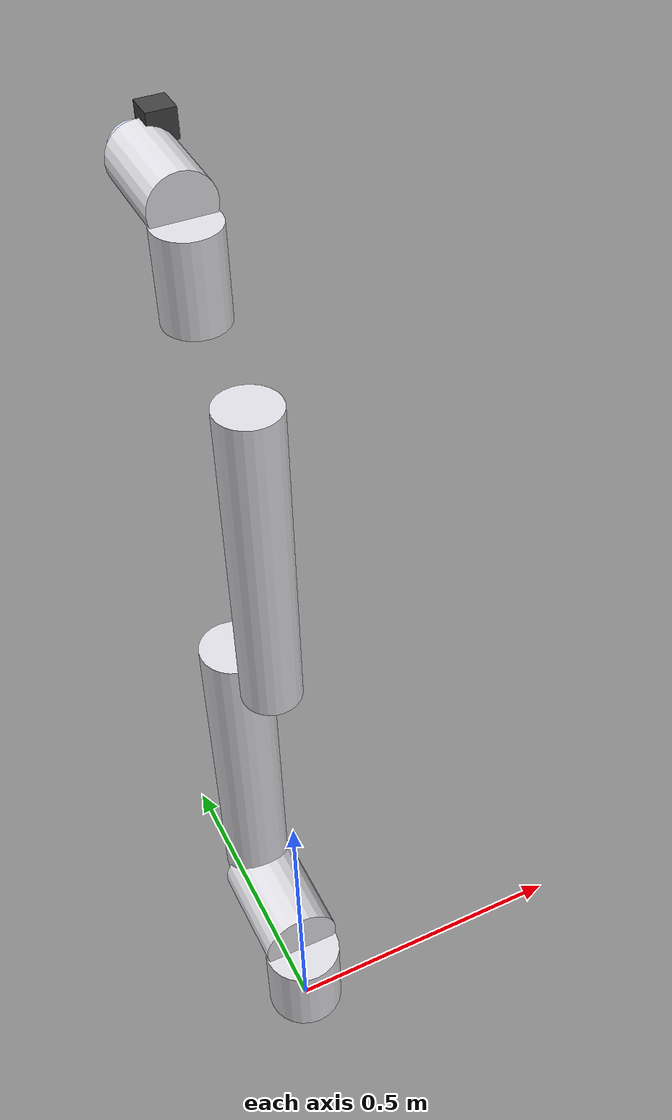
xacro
<?xml version="1.0"?>
<robot xmlns:xacro="http://www.ros.org/wiki/xacro" name="sbot">
  <xacro:arg name="use_fake_hardware" default="true"/>

  <xacro:include filename="$(find sbot_core_base_config)/description/sbot_core.urdf"/>

  <link name="grasp_link"/>
  <joint name="grasp_link_joint" type="fixed">
    <parent link="tool0"/>
    <child link="grasp_link"/>
    <origin xyz="0 0 0" rpy="0 0 0"/>
  </joint>

  <xacro:include filename="$(find sbot_core_base_config)/description/sbot_core.ros2_control.xacro"/>
  <xacro:sbot_core_ros2_control name="SbotCoreSystem" use_fake_hardware="$(arg use_fake_hardware)"/>
</robot>

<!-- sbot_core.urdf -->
<robot name="sbot">
  <link name="world"/>

  <!-- base_link — pedestal, ~17cm tall to joint0 -->
  <link name="base_link">
    <inertial>
      <mass value="1.3899"/>
      <origin rpy="0 0 0" xyz="3.5615e-07 -3.5615e-07 0.038531"/>
      <inertia ixx="0.0032902" ixy="-4.9417e-13" ixz="6.3717e-08" iyy="0.0032903" iyz="-6.3717e-08" izz="0.0056833"/>
    </inertial>
    <visual>
      <origin rpy="0 0 0" xyz="0 0 0.075"/>
      <geometry><cylinder radius="0.065" length="0.15"/></geometry>
      <material name="sbot_grey"><color rgba="0.86667 0.86667 0.8902 1"/></material>
    </visual>
    <collision>
      <origin rpy="0 0 0" xyz="0 0 0.075"/>
      <geometry><cylinder radius="0.06" length="0.14"/></geometry>
    </collision>
  </link>

  <!-- shoulder_link — extends in -X to joint1 at x=-0.1885 -->
  <link name="shoulder_link">
    <inertial>
      <mass value="7.48000886526123"/>
      <origin rpy="0 0 0" xyz="-0.0155060034853395 5.31133813950851e-06 0.00202665932285853"/>
      <inertia ixx="0.0290130325419372" ixy="1.13558315803054e-06" ixz="-0.000123670453068877" iyy="0.0296005432331486" iyz="7.83938203517328e-08" izz="0.0236795403640951"/>
    </inertial>
    <visual>
      <origin rpy="0 1.5707963 0" xyz="-0.09 0 0"/>
      <geometry><cylinder radius="0.065" length="0.18"/></geometry>
      <material name="sbot_grey"/>
    </visual>
    <collision>
      <origin rpy="0 1.5707963 0" xyz="-0.09 0 0"/>
      <geometry><cylinder radius="0.06" length="0.16"/></geometry>
    </collision>
  </link>

  <!-- upper_arm_link — extends along +Z to joint2 at z=0.5907 -->
  <link name="upper_arm_link">
    <inertial>
      <mass value="13.27"/>
      <origin rpy="0 0 0" xyz="0.00037048 -1.0498e-06 0.24431"/>
      <inertia ixx="0.67313" ixy="1.0675e-07" ixz="-0.0075436" iyy="0.67925" iyz="-4.7892e-06" izz="0.037155"/>
    </inertial>
    <visual>
      <origin rpy="0 0 0" xyz="0 0 0.295"/>
      <geometry><cylinder radius="0.055" length="0.55"/></geometry>
      <material name="sbot_grey"/>
    </visual>
    <collision>
      <origin rpy="0 0 0" xyz="0 0 0.295"/>
      <geometry><cylinder radius="0.05" length="0.52"/></geometry>
    </collision>
  </link>

  <!-- forearm_link — extends along +Z to joint3 at z=0.5494 -->
  <link name="forearm_link">
    <inertial>
      <mass value="3.99015526098533"/>
      <origin rpy="0 0 0" xyz="-0.00856270285673266 -0.000680803891636816 0.284368892424253"/>
      <inertia ixx="0.183498055568642" ixy="5.42912788104132e-05" ixz="-0.00223976271110487" iyy="0.185228712942926" iyz="0.000226731091687184" izz="0.00597848990228215"/>
    </inertial>
    <visual>
      <origin rpy="0 0 0" xyz="0 0 0.275"/>
      <geometry><cylinder radius="0.045" length="0.50"/></geometry>
      <material name="sbot_grey"/>
    </visual>
    <collision>
      <origin rpy="0 0 0" xyz="0 0 0.275"/>
      <geometry><cylinder radius="0.04" length="0.47"/></geometry>
    </collision>
  </link>

  <!-- wrist_1_link — extends along +Z to joint4 at z=0.1498 -->
  <link name="wrist_1_link">
    <inertial>
      <mass value="2.34998758206812"/>
      <origin rpy="0 0 0" xyz="0.00603382118543186 5.30466422090696e-05 0.00949427052813601"/>
      <inertia ixx="0.00536507490753713" ixy="-1.22216192461661e-06" ixz="7.53472115754737e-05" iyy="0.00569170816671894" iyz="-2.77149728808046e-06" izz="0.00279356137797234"/>
    </inertial>
    <visual>
      <origin rpy="0 0 0" xyz="0 0 0.07"/>
      <geometry><cylinder radius="0.045" length="0.13"/></geometry>
      <material name="sbot_grey"/>
    </visual>
    <collision>
      <origin rpy="0 0 0" xyz="0 0 0.07"/>
      <geometry><cylinder radius="0.04" length="0.11"/></geometry>
    </collision>
  </link>

  <!-- wrist_2_link — extends along -X to joint5 at x=-0.1621 -->
  <link name="wrist_2_link">
    <inertial>
      <mass value="2.34998758206813"/>
      <origin rpy="0 0 0" xyz="-0.00949427052813648 -5.30466422084472e-05 -0.00603382118543183"/>
      <inertia ixx="0.00279356137797234" ixy="-2.77149728807979e-06" ixz="7.53472115754781e-05" iyy="0.00569170816671896" iyz="-1.2221619246072e-06" izz="0.00536507490753716"/>
    </inertial>
    <visual>
      <origin rpy="0 1.5707963 0" xyz="-0.075 0 0"/>
      <geometry><cylinder radius="0.045" length="0.14"/></geometry>
      <material name="sbot_grey"/>
    </visual>
    <collision>
      <origin rpy="0 1.5707963 0" xyz="-0.075 0 0"/>
      <geometry><cylinder radius="0.04" length="0.12"/></geometry>
    </collision>
  </link>

  <!-- wrist_3_link — small wrist tip, mass center near +X 0.048 -->
  <link name="wrist_3_link">
    <inertial>
      <mass value="0.572775624406093"/>
      <origin rpy="0 0 0" xyz="0.0477321679131623 0.00028403740032851 -0.00497796255034433"/>
      <inertia ixx="0.000707097246403867" ixy="7.23198267535677e-06" ixz="4.16184287898907e-05" iyy="0.000679826517402998" iyz="-2.50233694519018e-06" izz="0.000615679707653451"/>
    </inertial>
    <visual>
      <origin rpy="0 1.5707963 0" xyz="0.025 0 0"/>
      <geometry><cylinder radius="0.035" length="0.06"/></geometry>
      <material name="sbot_grey_dark"><color rgba="0.79216 0.81961 0.93333 1"/></material>
    </visual>
    <collision>
      <origin rpy="0 1.5707963 0" xyz="0.025 0 0"/>
      <geometry><cylinder radius="0.03" length="0.05"/></geometry>
    </collision>
  </link>

  <!-- wrist_3_cable_link — tiny cable accessory, kept for kinematic completeness -->
  <link name="wrist_3_cable_link">
    <inertial>
      <mass value="0.0080607"/>
      <origin rpy="0 0 0" xyz="0.019129 0.02812 0.040316"/>
      <inertia ixx="1.4286e-05" ixy="3.3605e-06" ixz="-2.5233e-06" iyy="9.3785e-06" iyz="5.8377e-06" izz="9.3754e-06"/>
    </inertial>
    <visual>
      <origin rpy="0 0 0" xyz="0.02 0.025 0.04"/>
      <geometry><box size="0.04 0.04 0.04"/></geometry>
      <material name="cable_grey"><color rgba="0.25098 0.25098 0.25098 1"/></material>
    </visual>
    <collision>
      <origin rpy="0 0 0" xyz="0.02 0.025 0.04"/>
      <geometry><box size="0.035 0.035 0.035"/></geometry>
    </collision>
  </link>

  <!-- Standard ROS-Industrial frames (no geometry) -->
  <link name="tool0"/>
  <link name="base"/>
  <link name="flange"/>

  <!-- JOINTS — unchanged from upstream -->
  <joint name="base_joint" type="fixed">
    <origin rpy="0 0 -1.5707963267948966" xyz="0 0 0"/>
    <parent link="world"/>
    <child link="base_link"/>
  </joint>

  <joint name="joint0" type="revolute">
    <origin rpy="0 0 0" xyz="0 0 0.172"/>
    <parent link="base_link"/>
    <child link="shoulder_link"/>
    <axis xyz="0 0 1"/>
    <limit effort="346.0" lower="-6.283185307179586" upper="6.283185307179586" velocity="4.71238898038469"/>
  </joint>

  <joint name="joint1" type="revolute">
    <origin rpy="0 0 0" xyz="-0.1885 0 0"/>
    <parent link="shoulder_link"/>
    <child link="upper_arm_link"/>
    <axis xyz="-1 0 0"/>
    <limit effort="346.0" lower="-2.356194490192345" upper="2.356194490192345" velocity="4.71238898038469"/>
  </joint>

  <joint name="joint2" type="revolute">
    <origin rpy="0 0 0" xyz="0.14635000035763 0 0.5906999941826"/>
    <parent link="upper_arm_link"/>
    <child link="forearm_link"/>
    <axis xyz="-1 0 0"/>
    <limit effort="163.0" lower="-2.8797932657906435" upper="2.8797932657906435" velocity="5.026548245743669"/>
  </joint>

  <joint name="joint3" type="revolute">
    <origin rpy="0 0 0" xyz="-0.1498 0 0.5494"/>
    <parent link="forearm_link"/>
    <child link="wrist_1_link"/>
    <axis xyz="-1 0 0"/>
    <limit effort="63.0" lower="-6.283185307179586" upper="6.283185307179586" velocity="6.806784082777885"/>
  </joint>

  <joint name="joint4" type="revolute">
    <origin rpy="0 0 0" xyz="0 0 0.1498"/>
    <parent link="wrist_1_link"/>
    <child link="wrist_2_link"/>
    <axis xyz="0 0 1"/>
    <limit effort="63.0" lower="-6.283185307179586" upper="6.283185307179586" velocity="6.806784082777885"/>
  </joint>

  <joint name="joint5" type="revolute">
    <origin rpy="0 0 0" xyz="-0.1621 0 0"/>
    <parent link="wrist_2_link"/>
    <child link="wrist_3_link"/>
    <axis xyz="-1 0 0"/>
    <limit effort="63.0" lower="-6.283185307179586" upper="6.283185307179586" velocity="6.806784082777885"/>
  </joint>

  <joint name="joint5-tool0" type="fixed">
    <parent link="wrist_3_link"/>
    <child link="tool0"/>
    <origin rpy="1.5707963267948966 0 -1.5707963267948966" xyz="0 0 0"/>
  </joint>

  <joint name="joint5_cable" type="fixed">
    <parent link="wrist_3_link"/>
    <child link="wrist_3_cable_link"/>
    <origin rpy="0 0 0" xyz="0 0 0"/>
    <axis xyz="0 0 0"/>
  </joint>

  <joint name="base_link-base_joint" type="fixed">
    <origin rpy="0 0 0" xyz="0 0 0"/>
    <parent link="base_link"/>
    <child link="base"/>
  </joint>

  <joint name="tool0-flange_joint" type="fixed">
    <origin rpy="0 0 0" xyz="0 0 0"/>
    <parent link="tool0"/>
    <child link="flange"/>
  </joint>
</robot>
